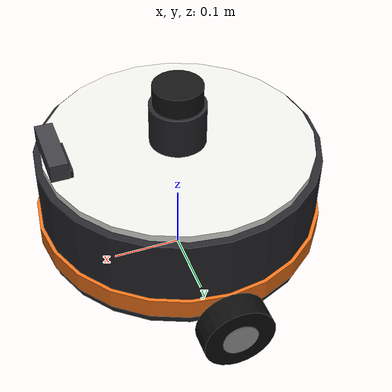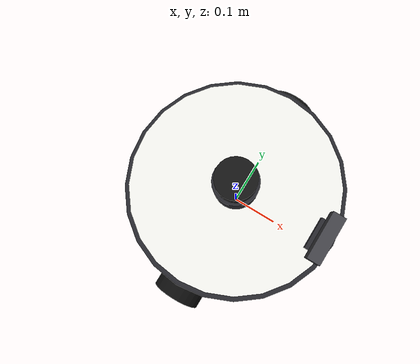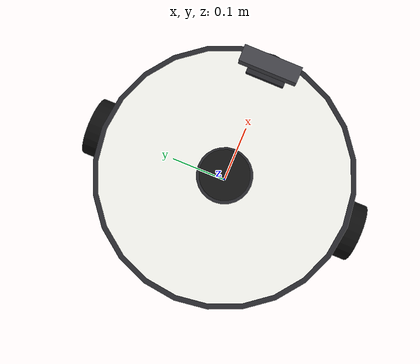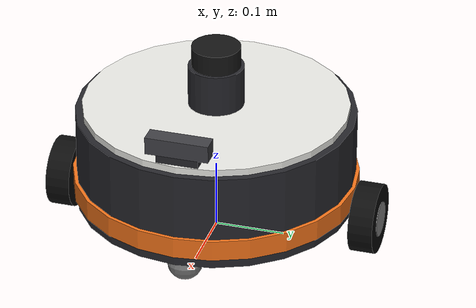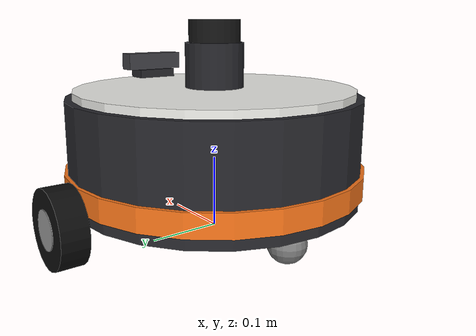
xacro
<?xml version="1.0"?>
<!-- RAPID-NAV: a differential-drive service robot with an RGB-D camera, an IMU and a 2D lidar.
     Units: metres, radians, kilograms. Numbers live in properties.xacro. -->
<robot name="rapid_nav" xmlns:xacro="http://www.ros.org/wiki/xacro">

  <xacro:arg name="camera_width" default="640"/>
  <xacro:arg name="camera_height" default="480"/>
  <xacro:arg name="camera_rate" default="30"/>
  <xacro:arg name="camera_hfov" default="1.211"/>
  <xacro:arg name="camera_pitch" default="0.0"/>

  <xacro:include filename="properties.xacro"/>
  <xacro:include filename="materials.xacro"/>
  <xacro:include filename="inertials.xacro"/>

  <!-- Camera arguments become plain properties for the sensor blocks. -->
  <xacro:property name="camera_width" value="$(arg camera_width)"/>
  <xacro:property name="camera_height" value="$(arg camera_height)"/>
  <xacro:property name="camera_rate" value="$(arg camera_rate)"/>
  <xacro:property name="camera_hfov" value="$(arg camera_hfov)"/>
  <xacro:property name="camera_pitch" value="$(arg camera_pitch)"/>

  <xacro:include filename="base.xacro"/>
  <xacro:include filename="sensors.xacro"/>
  <xacro:include filename="gazebo.xacro"/>

</robot>

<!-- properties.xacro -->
<!-- Every number of the robot model, in one place. Units: metres, radians, kilograms. -->
<robot xmlns:xacro="http://www.ros.org/wiki/xacro">

  <!-- Body. base_link sits on the wheel axis, base_footprint is on the ground. -->
  <xacro:property name="base_link_height" value="0.05"/>
  <xacro:property name="chassis_radius" value="0.20"/>
  <xacro:property name="chassis_length" value="0.14"/>
  <xacro:property name="chassis_z" value="0.07"/>
  <xacro:property name="chassis_mass" value="6.0"/>
  <xacro:property name="deck_radius" value="0.19"/>
  <xacro:property name="deck_length" value="0.01"/>
  <xacro:property name="deck_z" value="0.145"/>
  <xacro:property name="bumper_radius" value="0.205"/>
  <xacro:property name="bumper_length" value="0.03"/>
  <xacro:property name="bumper_z" value="0.03"/>
  <xacro:property name="mount_size_x" value="0.03"/>
  <xacro:property name="mount_size_y" value="0.06"/>
  <xacro:property name="mount_size_z" value="0.0125"/>
  <xacro:property name="mount_x" value="0.17"/>
  <xacro:property name="mount_z" value="0.15625"/>

  <!-- Driving wheels and casters. -->
  <xacro:property name="wheel_radius" value="0.05"/>
  <xacro:property name="wheel_length" value="0.035"/>
  <xacro:property name="wheel_y" value="0.225"/>
  <xacro:property name="wheel_mass" value="0.4"/>
  <xacro:property name="wheel_roll" value="1.5708"/>
  <xacro:property name="hub_radius" value="0.025"/>
  <xacro:property name="hub_length" value="0.037"/>
  <xacro:property name="wheel_separation" value="0.45"/>
  <xacro:property name="caster_radius" value="0.025"/>
  <xacro:property name="caster_x" value="0.15"/>
  <xacro:property name="caster_z" value="-0.025"/>
  <xacro:property name="caster_mass" value="0.1"/>

  <!-- Turret, lidar, camera and IMU. -->
  <xacro:property name="turret_z" value="0.18"/>
  <xacro:property name="turret_radius" value="0.04"/>
  <xacro:property name="turret_length" value="0.06"/>
  <xacro:property name="turret_mass" value="0.05"/>
  <xacro:property name="lidar_z" value="0.225"/>
  <xacro:property name="lidar_radius" value="0.035"/>
  <xacro:property name="lidar_length" value="0.03"/>
  <xacro:property name="lidar_mass" value="0.17"/>
  <xacro:property name="camera_x" value="0.175"/>
  <xacro:property name="camera_z" value="0.175"/>
  <xacro:property name="camera_box_x" value="0.025"/>
  <xacro:property name="camera_box_y" value="0.09"/>
  <xacro:property name="camera_box_z" value="0.025"/>
  <xacro:property name="camera_mass" value="0.07"/>
  <xacro:property name="camera_optical_roll" value="-1.5708"/>
  <xacro:property name="camera_optical_pitch" value="0.0"/>
  <xacro:property name="camera_optical_yaw" value="-1.5708"/>
  <xacro:property name="imu_z" value="0.10"/>
  <xacro:property name="imu_size" value="0.01"/>
  <xacro:property name="imu_mass" value="0.01"/>

  <!-- Sensor settings (the camera's size, rate and field of view are arguments of the top file). -->
  <xacro:property name="camera_clip_near" value="0.1"/>
  <xacro:property name="camera_clip_far" value="10.0"/>
  <xacro:property name="camera_noise_stddev" value="0.007"/>
  <xacro:property name="lidar_rate" value="10"/>
  <xacro:property name="lidar_samples" value="360"/>
  <xacro:property name="lidar_min_angle" value="-3.14159"/>
  <xacro:property name="lidar_max_angle" value="3.12414"/>
  <xacro:property name="lidar_range_min" value="0.12"/>
  <xacro:property name="lidar_range_max" value="12.0"/>
  <xacro:property name="lidar_range_resolution" value="0.01"/>
  <xacro:property name="lidar_noise_stddev" value="0.01"/>
  <xacro:property name="imu_rate" value="200"/>
  <xacro:property name="imu_gyro_noise_stddev" value="0.0025"/>
  <xacro:property name="imu_gyro_bias_stddev" value="0.0005"/>
  <xacro:property name="imu_accel_noise_stddev" value="0.02"/>
  <xacro:property name="imu_accel_bias_stddev" value="0.01"/>

  <!-- Gazebo friction and the model plugins. -->
  <xacro:property name="wheel_mu" value="1.0"/>
  <xacro:property name="caster_mu" value="0.0"/>
  <xacro:property name="wheel_max_linear_velocity" value="0.6"/>
  <xacro:property name="wheel_max_angular_velocity" value="2.0"/>
  <xacro:property name="wheel_max_linear_acceleration" value="1.0"/>
  <xacro:property name="wheel_max_angular_acceleration" value="3.0"/>
  <xacro:property name="odom_publish_frequency" value="50"/>

</robot>

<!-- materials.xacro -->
<!-- Named colours used by the robot links. -->
<robot xmlns:xacro="http://www.ros.org/wiki/xacro">
  <material name="graphite">
    <color rgba="0.15 0.15 0.17 1.0"/>
  </material>
  <material name="deck_white">
    <color rgba="0.92 0.92 0.90 1.0"/>
  </material>
  <material name="bumper_orange">
    <color rgba="0.95 0.45 0.10 1.0"/>
  </material>
  <material name="tyre_black">
    <color rgba="0.05 0.05 0.05 1.0"/>
  </material>
  <material name="hub_grey">
    <color rgba="0.6 0.6 0.6 1.0"/>
  </material>
  <material name="caster_grey">
    <color rgba="0.5 0.5 0.5 1.0"/>
  </material>
  <material name="lidar_black">
    <color rgba="0.08 0.08 0.08 1.0"/>
  </material>
  <material name="camera_grey">
    <color rgba="0.25 0.25 0.27 1.0"/>
  </material>
</robot>

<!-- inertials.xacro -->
<!-- Inertia macros for solid primitives. The inertial frame is given by xyz and rpy; for a cylinder the
     axis is the inertial frame's z axis, for a box the sides are x, y, z. -->
<robot xmlns:xacro="http://www.ros.org/wiki/xacro">

  <xacro:macro name="solid_cylinder_inertial" params="mass radius length xyz:='0 0 0' rpy:='0 0 0'">
    <inertial>
      <origin xyz="${xyz}" rpy="${rpy}"/>
      <mass value="${mass}"/>
      <inertia ixx="${mass * (3 * radius * radius + length * length) / 12}" ixy="0" ixz="0"
               iyy="${mass * (3 * radius * radius + length * length) / 12}" iyz="0"
               izz="${mass * radius * radius / 2}"/>
    </inertial>
  </xacro:macro>

  <xacro:macro name="solid_box_inertial" params="mass x y z xyz:='0 0 0' rpy:='0 0 0'">
    <inertial>
      <origin xyz="${xyz}" rpy="${rpy}"/>
      <mass value="${mass}"/>
      <inertia ixx="${mass * (y * y + z * z) / 12}" ixy="0" ixz="0"
               iyy="${mass * (x * x + z * z) / 12}" iyz="0"
               izz="${mass * (x * x + y * y) / 12}"/>
    </inertial>
  </xacro:macro>

  <xacro:macro name="solid_sphere_inertial" params="mass radius xyz:='0 0 0'">
    <inertial>
      <origin xyz="${xyz}" rpy="0 0 0"/>
      <mass value="${mass}"/>
      <inertia ixx="${2 * mass * radius * radius / 5}" ixy="0" ixz="0"
               iyy="${2 * mass * radius * radius / 5}" iyz="0"
               izz="${2 * mass * radius * radius / 5}"/>
    </inertial>
  </xacro:macro>

</robot>

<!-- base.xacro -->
<!-- Body, driving wheels and casters. -->
<robot xmlns:xacro="http://www.ros.org/wiki/xacro">

  <link name="base_footprint"/>

  <joint name="base_link_joint" type="fixed">
    <parent link="base_footprint"/>
    <child link="base_link"/>
    <origin xyz="0 0 ${base_link_height}" rpy="0 0 0"/>
  </joint>

  <link name="base_link">
    <visual>
      <origin xyz="0 0 ${chassis_z}" rpy="0 0 0"/>
      <geometry>
        <cylinder radius="${chassis_radius}" length="${chassis_length}"/>
      </geometry>
      <material name="graphite"/>
    </visual>
    <collision>
      <origin xyz="0 0 ${chassis_z}" rpy="0 0 0"/>
      <geometry>
        <cylinder radius="${chassis_radius}" length="${chassis_length}"/>
      </geometry>
    </collision>
    <visual>
      <origin xyz="0 0 ${deck_z}" rpy="0 0 0"/>
      <geometry>
        <cylinder radius="${deck_radius}" length="${deck_length}"/>
      </geometry>
      <material name="deck_white"/>
    </visual>
    <visual>
      <origin xyz="0 0 ${bumper_z}" rpy="0 0 0"/>
      <geometry>
        <cylinder radius="${bumper_radius}" length="${bumper_length}"/>
      </geometry>
      <material name="bumper_orange"/>
    </visual>
    <visual>
      <origin xyz="${mount_x} 0 ${mount_z}" rpy="0 0 0"/>
      <geometry>
        <box size="${mount_size_x} ${mount_size_y} ${mount_size_z}"/>
      </geometry>
      <material name="graphite"/>
    </visual>
    <xacro:solid_cylinder_inertial mass="${chassis_mass}" radius="${chassis_radius}"
                                   length="${chassis_length}" xyz="0 0 ${chassis_z}"/>
  </link>

  <xacro:macro name="wheel" params="side y">
    <link name="${side}_wheel_link">
      <visual>
        <origin xyz="0 0 0" rpy="${wheel_roll} 0 0"/>
        <geometry>
          <cylinder radius="${wheel_radius}" length="${wheel_length}"/>
        </geometry>
        <material name="tyre_black"/>
      </visual>
      <visual>
        <origin xyz="0 0 0" rpy="${wheel_roll} 0 0"/>
        <geometry>
          <cylinder radius="${hub_radius}" length="${hub_length}"/>
        </geometry>
        <material name="hub_grey"/>
      </visual>
      <collision>
        <origin xyz="0 0 0" rpy="${wheel_roll} 0 0"/>
        <geometry>
          <cylinder radius="${wheel_radius}" length="${wheel_length}"/>
        </geometry>
      </collision>
      <xacro:solid_cylinder_inertial mass="${wheel_mass}" radius="${wheel_radius}"
                                     length="${wheel_length}" rpy="${wheel_roll} 0 0"/>
    </link>
    <joint name="${side}_wheel_joint" type="continuous">
      <parent link="base_link"/>
      <child link="${side}_wheel_link"/>
      <origin xyz="0 ${y} 0" rpy="0 0 0"/>
      <axis xyz="0 1 0"/>
    </joint>
  </xacro:macro>

  <xacro:wheel side="left" y="${wheel_y}"/>
  <xacro:wheel side="right" y="${-wheel_y}"/>

  <xacro:macro name="caster" params="side x">
    <link name="${side}_caster_link">
      <visual>
        <origin xyz="0 0 0" rpy="0 0 0"/>
        <geometry>
          <sphere radius="${caster_radius}"/>
        </geometry>
        <material name="caster_grey"/>
      </visual>
      <collision>
        <origin xyz="0 0 0" rpy="0 0 0"/>
        <geometry>
          <sphere radius="${caster_radius}"/>
        </geometry>
      </collision>
      <xacro:solid_sphere_inertial mass="${caster_mass}" radius="${caster_radius}"/>
    </link>
    <joint name="${side}_caster_joint" type="fixed">
      <parent link="base_link"/>
      <child link="${side}_caster_link"/>
      <origin xyz="${x} 0 ${caster_z}" rpy="0 0 0"/>
    </joint>
  </xacro:macro>

  <xacro:caster side="front" x="${caster_x}"/>
  <xacro:caster side="rear" x="${-caster_x}"/>

</robot>

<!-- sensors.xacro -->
<!-- Turret, lidar, RGB-D camera (with its optical frame) and IMU, with their Gazebo sensor blocks. -->
<robot xmlns:xacro="http://www.ros.org/wiki/xacro">

  <!-- Turret: a short post that carries the lidar. -->
  <link name="turret_link">
    <visual>
      <origin xyz="0 0 0" rpy="0 0 0"/>
      <geometry>
        <cylinder radius="${turret_radius}" length="${turret_length}"/>
      </geometry>
      <material name="graphite"/>
    </visual>
    <collision>
      <origin xyz="0 0 0" rpy="0 0 0"/>
      <geometry>
        <cylinder radius="${turret_radius}" length="${turret_length}"/>
      </geometry>
    </collision>
    <xacro:solid_cylinder_inertial mass="${turret_mass}" radius="${turret_radius}" length="${turret_length}"/>
  </link>

  <joint name="turret_joint" type="fixed">
    <parent link="base_link"/>
    <child link="turret_link"/>
    <origin xyz="0 0 ${turret_z}" rpy="0 0 0"/>
  </joint>

  <!-- 2D lidar: its scan plane is the lidar_link origin. -->
  <link name="lidar_link">
    <visual>
      <origin xyz="0 0 0" rpy="0 0 0"/>
      <geometry>
        <cylinder radius="${lidar_radius}" length="${lidar_length}"/>
      </geometry>
      <material name="lidar_black"/>
    </visual>
    <collision>
      <origin xyz="0 0 0" rpy="0 0 0"/>
      <geometry>
        <cylinder radius="${lidar_radius}" length="${lidar_length}"/>
      </geometry>
    </collision>
    <xacro:solid_cylinder_inertial mass="${lidar_mass}" radius="${lidar_radius}" length="${lidar_length}"/>
  </link>

  <joint name="lidar_joint" type="fixed">
    <parent link="base_link"/>
    <child link="lidar_link"/>
    <origin xyz="0 0 ${lidar_z}" rpy="0 0 0"/>
  </joint>

  <!-- RGB-D camera body. The image frame is camera_optical_frame (z forward, x right, y down). -->
  <link name="camera_link">
    <visual>
      <origin xyz="0 0 0" rpy="0 0 0"/>
      <geometry>
        <box size="${camera_box_x} ${camera_box_y} ${camera_box_z}"/>
      </geometry>
      <material name="camera_grey"/>
    </visual>
    <collision>
      <origin xyz="0 0 0" rpy="0 0 0"/>
      <geometry>
        <box size="${camera_box_x} ${camera_box_y} ${camera_box_z}"/>
      </geometry>
    </collision>
    <xacro:solid_box_inertial mass="${camera_mass}" x="${camera_box_x}" y="${camera_box_y}" z="${camera_box_z}"/>
  </link>

  <joint name="camera_joint" type="fixed">
    <parent link="base_link"/>
    <child link="camera_link"/>
    <origin xyz="${camera_x} 0 ${camera_z}" rpy="0 ${camera_pitch} 0"/>
  </joint>

  <link name="camera_optical_frame"/>

  <joint name="camera_optical_joint" type="fixed">
    <parent link="camera_link"/>
    <child link="camera_optical_frame"/>
    <origin xyz="0 0 0" rpy="${camera_optical_roll} ${camera_optical_pitch} ${camera_optical_yaw}"/>
  </joint>

  <!-- IMU: a tiny box inside the body, only for its inertial frame. -->
  <link name="imu_link">
    <xacro:solid_box_inertial mass="${imu_mass}" x="${imu_size}" y="${imu_size}" z="${imu_size}"/>
  </link>

  <joint name="imu_joint" type="fixed">
    <parent link="base_link"/>
    <child link="imu_link"/>
    <origin xyz="0 0 ${imu_z}" rpy="0 0 0"/>
  </joint>

  <!-- Gazebo sensors (Gazebo Harmonic). -->
  <gazebo reference="camera_link">
    <sensor name="rgbd_camera" type="rgbd_camera">
      <always_on>true</always_on>
      <update_rate>${camera_rate}</update_rate>
      <visualize>false</visualize>
      <topic>camera</topic>
      <gz_frame_id>camera_optical_frame</gz_frame_id>
      <camera>
        <horizontal_fov>${camera_hfov}</horizontal_fov>
        <image>
          <width>${camera_width}</width>
          <height>${camera_height}</height>
          <format>R8G8B8</format>
        </image>
        <clip>
          <near>${camera_clip_near}</near>
          <far>${camera_clip_far}</far>
        </clip>
        <noise>
          <type>gaussian</type>
          <mean>0.0</mean>
          <stddev>${camera_noise_stddev}</stddev>
        </noise>
        <depth_camera>
          <clip>
            <near>${camera_clip_near}</near>
            <far>${camera_clip_far}</far>
          </clip>
        </depth_camera>
      </camera>
    </sensor>
  </gazebo>

  <gazebo reference="imu_link">
    <sensor name="imu" type="imu">
      <always_on>true</always_on>
      <update_rate>${imu_rate}</update_rate>
      <topic>imu</topic>
      <gz_frame_id>imu_link</gz_frame_id>
      <imu>
        <angular_velocity>
          <x>
            <noise type="gaussian">
              <mean>0.0</mean>
              <stddev>${imu_gyro_noise_stddev}</stddev>
              <bias_mean>0.0</bias_mean>
              <bias_stddev>${imu_gyro_bias_stddev}</bias_stddev>
            </noise>
          </x>
          <y>
            <noise type="gaussian">
              <mean>0.0</mean>
              <stddev>${imu_gyro_noise_stddev}</stddev>
              <bias_mean>0.0</bias_mean>
              <bias_stddev>${imu_gyro_bias_stddev}</bias_stddev>
            </noise>
          </y>
          <z>
            <noise type="gaussian">
              <mean>0.0</mean>
              <stddev>${imu_gyro_noise_stddev}</stddev>
              <bias_mean>0.0</bias_mean>
              <bias_stddev>${imu_gyro_bias_stddev}</bias_stddev>
            </noise>
          </z>
        </angular_velocity>
        <linear_acceleration>
          <x>
            <noise type="gaussian">
              <mean>0.0</mean>
              <stddev>${imu_accel_noise_stddev}</stddev>
              <bias_mean>0.0</bias_mean>
              <bias_stddev>${imu_accel_bias_stddev}</bias_stddev>
            </noise>
          </x>
          <y>
            <noise type="gaussian">
              <mean>0.0</mean>
              <stddev>${imu_accel_noise_stddev}</stddev>
              <bias_mean>0.0</bias_mean>
              <bias_stddev>${imu_accel_bias_stddev}</bias_stddev>
            </noise>
          </y>
          <z>
            <noise type="gaussian">
              <mean>0.0</mean>
              <stddev>${imu_accel_noise_stddev}</stddev>
              <bias_mean>0.0</bias_mean>
              <bias_stddev>${imu_accel_bias_stddev}</bias_stddev>
            </noise>
          </z>
        </linear_acceleration>
      </imu>
    </sensor>
  </gazebo>

  <gazebo reference="lidar_link">
    <sensor name="lidar" type="gpu_lidar">
      <always_on>true</always_on>
      <update_rate>${lidar_rate}</update_rate>
      <visualize>false</visualize>
      <topic>scan</topic>
      <gz_frame_id>lidar_link</gz_frame_id>
      <lidar>
        <scan>
          <horizontal>
            <samples>${lidar_samples}</samples>
            <resolution>1</resolution>
            <min_angle>${lidar_min_angle}</min_angle>
            <max_angle>${lidar_max_angle}</max_angle>
          </horizontal>
          <vertical>
            <samples>1</samples>
            <resolution>1</resolution>
            <min_angle>0.0</min_angle>
            <max_angle>0.0</max_angle>
          </vertical>
        </scan>
        <range>
          <min>${lidar_range_min}</min>
          <max>${lidar_range_max}</max>
          <resolution>${lidar_range_resolution}</resolution>
        </range>
        <noise>
          <type>gaussian</type>
          <mean>0.0</mean>
          <stddev>${lidar_noise_stddev}</stddev>
        </noise>
      </lidar>
    </sensor>
  </gazebo>

</robot>
